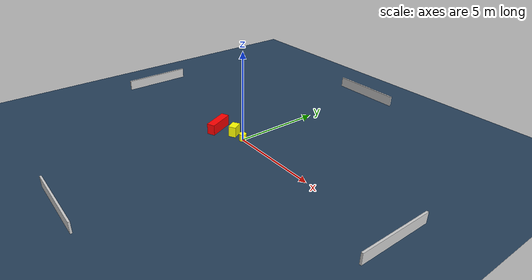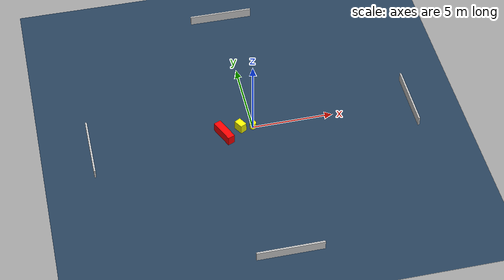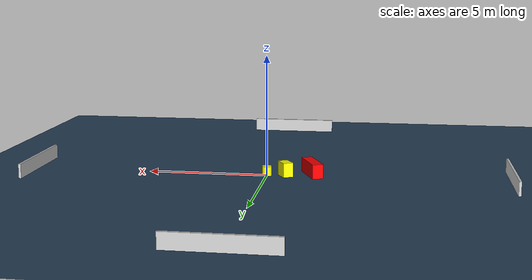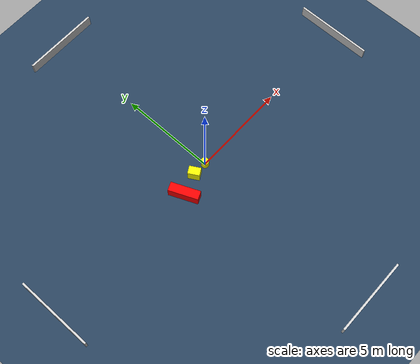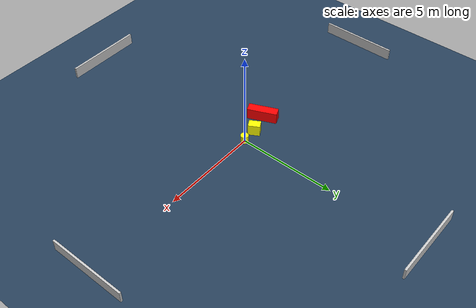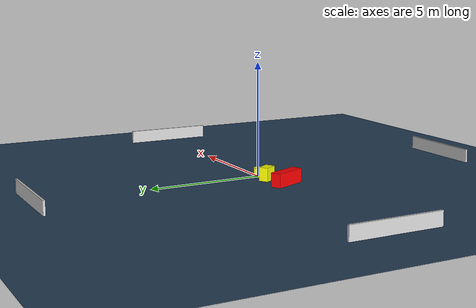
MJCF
<?xml version="1.0" ?>
<mujoco model="generated_environment">
  <option timestep="0.01" integrator="RK4" cone="elliptic"/>
  <default>
    <geom density="1"/>
  </default>
  <asset>
    <texture builtin="gradient" height="3072" name="skybox" rgb1="0.3 0.5 0.7" rgb2="0 0 0" type="skybox" width="512"/>
    <texture builtin="checker" height="300" name="groundplane" rgb1="0.2 0.3 0.4" rgb2="0.1 0.2 0.3" type="2d" width="300"/>
    <material name="groundplane" reflectance="0.2" texrepeat="5 5" texture="groundplane"/>
  </asset>
  <worldbody>
    <light dir="0 0 -1" directional="true" pos="0 0 1.5"/>
    <geom condim="3" friction="0.5 0.005 0.001" material="groundplane" name="floor" pos="0 0 0" size="0 0 0.05" type="plane"/>
    <body name="walls">
      <geom name="wall_1" condim="4" pos="-10.0 0.0 0.3" rgba="0.800000011920929 0.800000011920929 0.800000011920929 1.0" size="0.05 2.0 0.3" type="box"/>
      <geom name="wall_2" condim="4" pos="10.0 0.0 0.3" rgba="0.800000011920929 0.800000011920929 0.800000011920929 1.0" size="0.05 2.0 0.3" type="box"/>
      <geom name="wall_3" condim="4" pos="0.0 -10.0 0.3" rgba="0.800000011920929 0.800000011920929 0.800000011920929 1.0" size="2.0 0.05 0.3" type="box"/>
      <geom name="wall_4" condim="4" pos="0.0 10.0 0.3" rgba="0.800000011920929 0.800000011920929 0.800000011920929 1.0" size="2.0 0.05 0.3" type="box"/>
    </body>
    <body name="robot">
      <joint name="joint_x" type="slide" pos="0 0 0" axis="1 0 0"/>
      <joint name="joint_y" type="slide" pos="0 0 0" axis="0 1 0"/>
      <geom name="robot" type="cylinder" pos="0.0 0.0 0.2" size="0.2 0.2 0.0" mass="5.0" friction="1.0 0.005 0.0001" condim="4" rgba="1.0 1.0 0.0 1.0"/>
    </body>
    <body name="obstacle_1_movable">
      <geom name="obstacle_1_movable" condim="4" pos="-0.7763419536569769 -0.015295403054000387 0.3" euler="0 0 299.95135034605056" friction="0.0 0.005 0.001" rgba="1.0 1.0 0.0 1.0" size="0.2980937408705687 0.208938896909584 0.3" type="box" mass="0.1"/>
      <joint type="free"/>
    </body>
    <body name="obstacle_2_static">
      <geom name="obstacle_2_static" condim="4" pos="-1.856278135144041 -0.3571724150757876 0.3" euler="0 0 23.344567961950283" friction="0.0 0.005 0.001" rgba="1.0 0.0 0.0 1.0" size="0.22865123954812586 0.7585390052490235 0.3" type="box"/>
    </body>
  </worldbody>
  <actuator>
    <motor name="actuator_x" joint="joint_x" gear="1" ctrlrange="-1 1"/>
    <motor name="actuator_y" joint="joint_y" gear="1" ctrlrange="-1 1"/>
  </actuator>
</mujoco>
